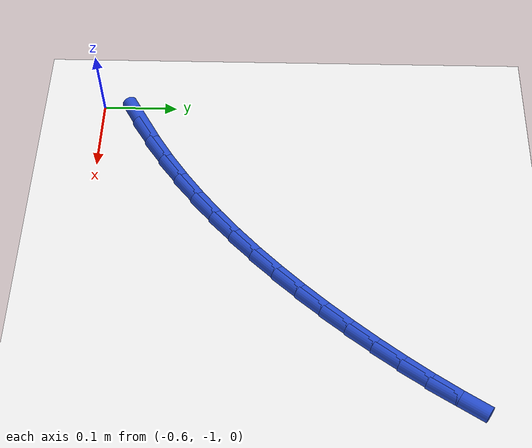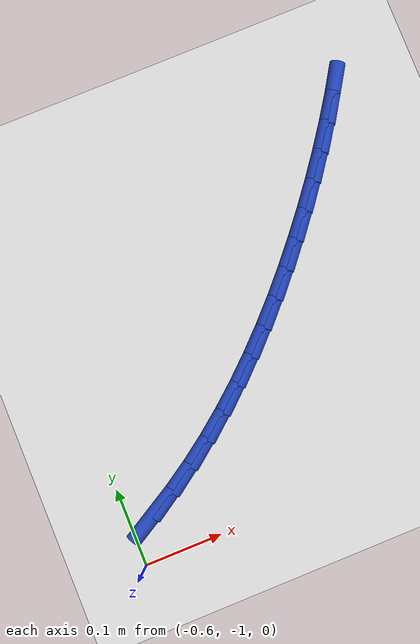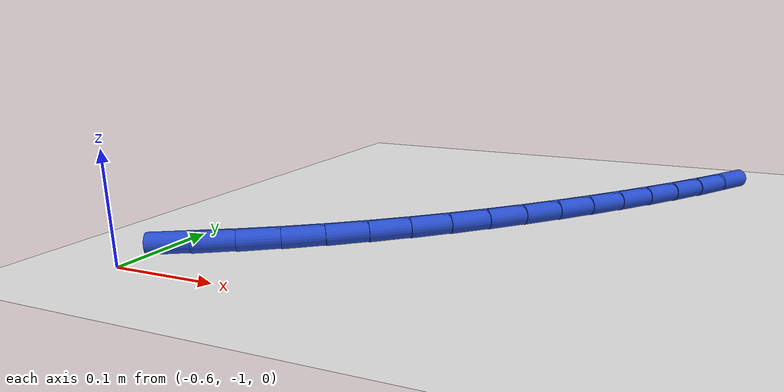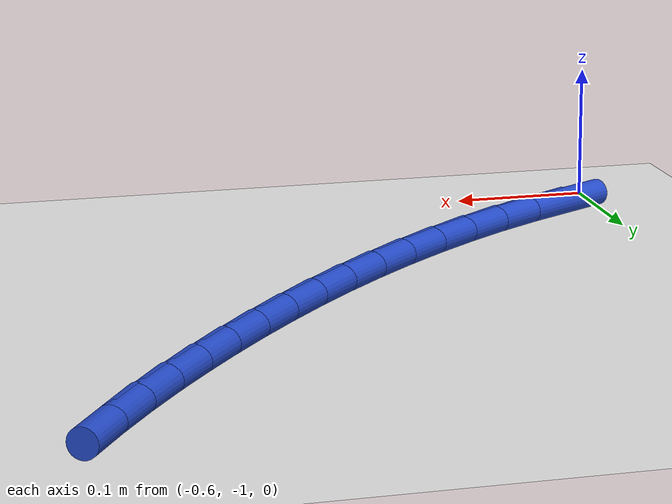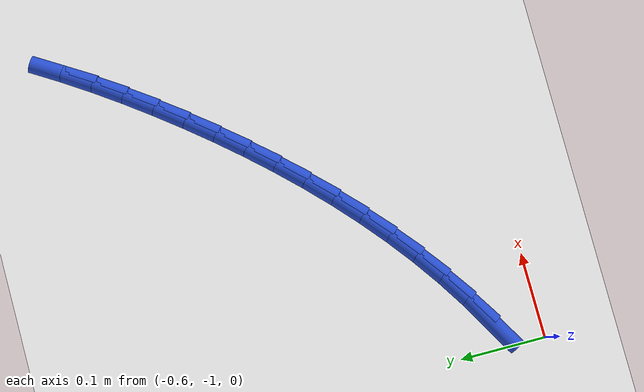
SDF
<sdf version="1.6">
 <world name="default">
  <model name="ground_plane">
   <static>1</static>
   <link name="link">
    <collision name="collision">
     <geometry><plane><normal>0 0 1</normal><size>100 100</size></plane></geometry>
     <surface><friction><ode><mu>100</mu><mu2>50</mu2></ode></friction></surface>
    </collision>
    <visual name="visual">
     <cast_shadows>0</cast_shadows>
     <geometry><plane><normal>0 0 1</normal><size>100 100</size></plane></geometry>
     <material>
      <script><uri>file://media/materials/scripts/gazebo.material</uri><name>Gazebo/WhiteGlow</name></script>
     </material>
    </visual>
   </link>
  </model>
  <model name="line">
   <link name="link_150">
    <pose>-0.5678152755628397 -0.9452219802362959 0.01 0 1.57 0.5228489007994949</pose>
    <collision name="collision">
     <geometry><cylinder><radius>0.01</radius><length>0.08</length></cylinder></geometry>
    </collision>
    <visual name="visual">
     <material>
      <script><name>Gazebo/Blue</name><uri>file://media/materials/scripts/gazebo.material</uri></script>
     </material>
     <geometry><cylinder><radius>0.01</radius><length>0.08</length></cylinder></geometry>
    </visual>
   </link>
   <link name="link_151">
    <pose>-0.5348929263560864 -0.9262471556740343 0.01 0 1.57 0.5715746328486381</pose>
    <collision name="collision">
     <geometry><cylinder><radius>0.01</radius><length>0.08</length></cylinder></geometry>
    </collision>
    <visual name="visual">
     <material>
      <script><name>Gazebo/Blue</name><uri>file://media/materials/scripts/gazebo.material</uri></script>
     </material>
     <geometry><cylinder><radius>0.01</radius><length>0.08</length></cylinder></geometry>
    </visual>
   </link>
   <link name="link_152">
    <pose>-0.5028090801409006 -0.9056110710984161 0.01 0 1.57 0.6172113164145775</pose>
    <collision name="collision">
     <geometry><cylinder><radius>0.01</radius><length>0.08</length></cylinder></geometry>
    </collision>
    <visual name="visual">
     <material>
      <script><name>Gazebo/Blue</name><uri>file://media/materials/scripts/gazebo.material</uri></script>
     </material>
     <geometry><cylinder><radius>0.01</radius><length>0.08</length></cylinder></geometry>
    </visual>
   </link>
   <link name="link_153">
    <pose>-0.47156117881476717 -0.8834342049284657 0.01 0 1.57 0.6598422929621559</pose>
    <collision name="collision">
     <geometry><cylinder><radius>0.01</radius><length>0.08</length></cylinder></geometry>
    </collision>
    <visual name="visual">
     <material>
      <script><name>Gazebo/Blue</name><uri>file://media/materials/scripts/gazebo.material</uri></script>
     </material>
     <geometry><cylinder><radius>0.01</radius><length>0.08</length></cylinder></geometry>
    </visual>
   </link>
   <link name="link_154">
    <pose>-0.4411466642751709 -0.8598370355832069 0.01 0 1.57 0.6995845889797948</pose>
    <collision name="collision">
     <geometry><cylinder><radius>0.01</radius><length>0.08</length></cylinder></geometry>
    </collision>
    <visual name="visual">
     <material>
      <script><name>Gazebo/Blue</name><uri>file://media/materials/scripts/gazebo.material</uri></script>
     </material>
     <geometry><cylinder><radius>0.01</radius><length>0.08</length></cylinder></geometry>
    </visual>
   </link>
   <link name="link_155">
    <pose>-0.41156297841959827 -0.8349400414816657 0.01 0 1.57 0.7365770753541712</pose>
    <collision name="collision">
     <geometry><cylinder><radius>0.01</radius><length>0.08</length></cylinder></geometry>
    </collision>
    <visual name="visual">
     <material>
      <script><name>Gazebo/Blue</name><uri>file://media/materials/scripts/gazebo.material</uri></script>
     </material>
     <geometry><cylinder><radius>0.01</radius><length>0.08</length></cylinder></geometry>
    </visual>
   </link>
   <link name="link_156">
    <pose>-0.38280756314553344 -0.8088637010428652 0.01 0 1.57 0.7709708394157503</pose>
    <collision name="collision">
     <geometry><cylinder><radius>0.01</radius><length>0.08</length></cylinder></geometry>
    </collision>
    <visual name="visual">
     <material>
      <script><name>Gazebo/Blue</name><uri>file://media/materials/scripts/gazebo.material</uri></script>
     </material>
     <geometry><cylinder><radius>0.01</radius><length>0.08</length></cylinder></geometry>
    </visual>
   </link>
   <link name="link_157">
    <pose>-0.3548778603504619 -0.7817284926858308 0.01 0 1.57 0.8029216843687648</pose>
    <collision name="collision">
     <geometry><cylinder><radius>0.01</radius><length>0.08</length></cylinder></geometry>
    </collision>
    <visual name="visual">
     <material>
      <script><name>Gazebo/Blue</name><uri>file://media/materials/scripts/gazebo.material</uri></script>
     </material>
     <geometry><cylinder><radius>0.01</radius><length>0.08</length></cylinder></geometry>
    </visual>
   </link>
   <link name="link_158">
    <pose>-0.3277713119318686 -0.7536548948295858 0.01 0 1.57 0.8325845081815534</pose>
    <collision name="collision">
     <geometry><cylinder><radius>0.01</radius><length>0.08</length></cylinder></geometry>
    </collision>
    <visual name="visual">
     <material>
      <script><name>Gazebo/Blue</name><uri>file://media/materials/scripts/gazebo.material</uri></script>
     </material>
     <geometry><cylinder><radius>0.01</radius><length>0.08</length></cylinder></geometry>
    </visual>
   </link>
   <link name="link_159">
    <pose>-0.3014853597872382 -0.7247633858931549 0.01 0 1.57 0.8601092455597277</pose>
    <collision name="collision">
     <geometry><cylinder><radius>0.01</radius><length>0.08</length></cylinder></geometry>
    </collision>
    <visual name="visual">
     <material>
      <script><name>Gazebo/Blue</name><uri>file://media/materials/scripts/gazebo.material</uri></script>
     </material>
     <geometry><cylinder><radius>0.01</radius><length>0.08</length></cylinder></geometry>
    </visual>
   </link>
   <link name="link_160">
    <pose>-0.276017445814057 -0.6951744442955636 0.01 0 1.57 0.8856380483747537</pose>
    <collision name="collision">
     <geometry><cylinder><radius>0.01</radius><length>0.08</length></cylinder></geometry>
    </collision>
    <visual name="visual">
     <material>
      <script><name>Gazebo/Blue</name><uri>file://media/materials/scripts/gazebo.material</uri></script>
     </material>
     <geometry><cylinder><radius>0.01</radius><length>0.08</length></cylinder></geometry>
    </visual>
   </link>
   <link name="link_161">
    <pose>-0.2513650119098096 -0.6650085484558357 0.01 0 1.57 0.9093167479181951</pose>
    <collision name="collision">
     <geometry><cylinder><radius>0.01</radius><length>0.08</length></cylinder></geometry>
    </collision>
    <visual name="visual">
     <material>
      <script><name>Gazebo/Blue</name><uri>file://media/materials/scripts/gazebo.material</uri></script>
     </material>
     <geometry><cylinder><radius>0.01</radius><length>0.08</length></cylinder></geometry>
    </visual>
   </link>
   <link name="link_162">
    <pose>-0.22752573906813311 -0.6343856409723502 0.01 0 1.57 0.9325559844665837</pose>
    <collision name="collision">
     <geometry><cylinder><radius>0.01</radius><length>0.08</length></cylinder></geometry>
    </collision>
    <visual name="visual">
     <material>
      <script><name>Gazebo/Blue</name><uri>file://media/materials/scripts/gazebo.material</uri></script>
     </material>
     <geometry><cylinder><radius>0.01</radius><length>0.08</length></cylinder></geometry>
    </visual>
   </link>
   <link name="link_163">
    <pose>-0.2045205728057386 -0.6033735280471058 0.01 0 1.57 0.9577742305860298</pose>
    <collision name="collision">
     <geometry><cylinder><radius>0.01</radius><length>0.08</length></cylinder></geometry>
    </collision>
    <visual name="visual">
     <material>
      <script><name>Gazebo/Blue</name><uri>file://media/materials/scripts/gazebo.material</uri></script>
     </material>
     <geometry><cylinder><radius>0.01</radius><length>0.08</length></cylinder></geometry>
    </visual>
   </link>
   <link name="link_164">
    <pose>-0.18241287582510118 -0.5719449578745327 0.01 0 1.57 0.9852419969028641</pose>
    <collision name="collision">
     <geometry><cylinder><radius>0.01</radius><length>0.08</length></cylinder></geometry>
    </collision>
    <visual name="visual">
     <material>
      <script><name>Gazebo/Blue</name><uri>file://media/materials/scripts/gazebo.material</uri></script>
     </material>
     <geometry><cylinder><radius>0.01</radius><length>0.08</length></cylinder></geometry>
    </visual>
   </link>
   <link name="link_165">
    <pose>-0.16127051923854707 -0.5400625751862772 0.01 0 1.57 1.0149633390473047</pose>
    <collision name="collision">
     <geometry><cylinder><radius>0.01</radius><length>0.08</length></cylinder></geometry>
    </collision>
    <visual name="visual">
     <material>
      <script><name>Gazebo/Blue</name><uri>file://media/materials/scripts/gazebo.material</uri></script>
     </material>
     <geometry><cylinder><radius>0.01</radius><length>0.08</length></cylinder></geometry>
    </visual>
   </link>
  </model>
 </world>
</sdf>
